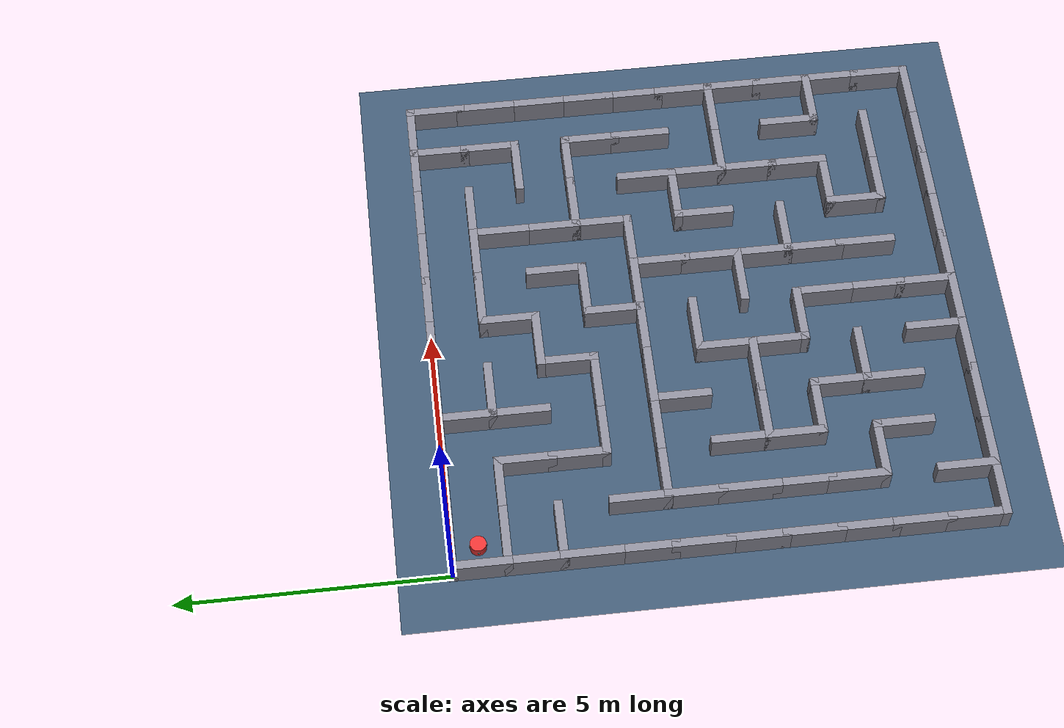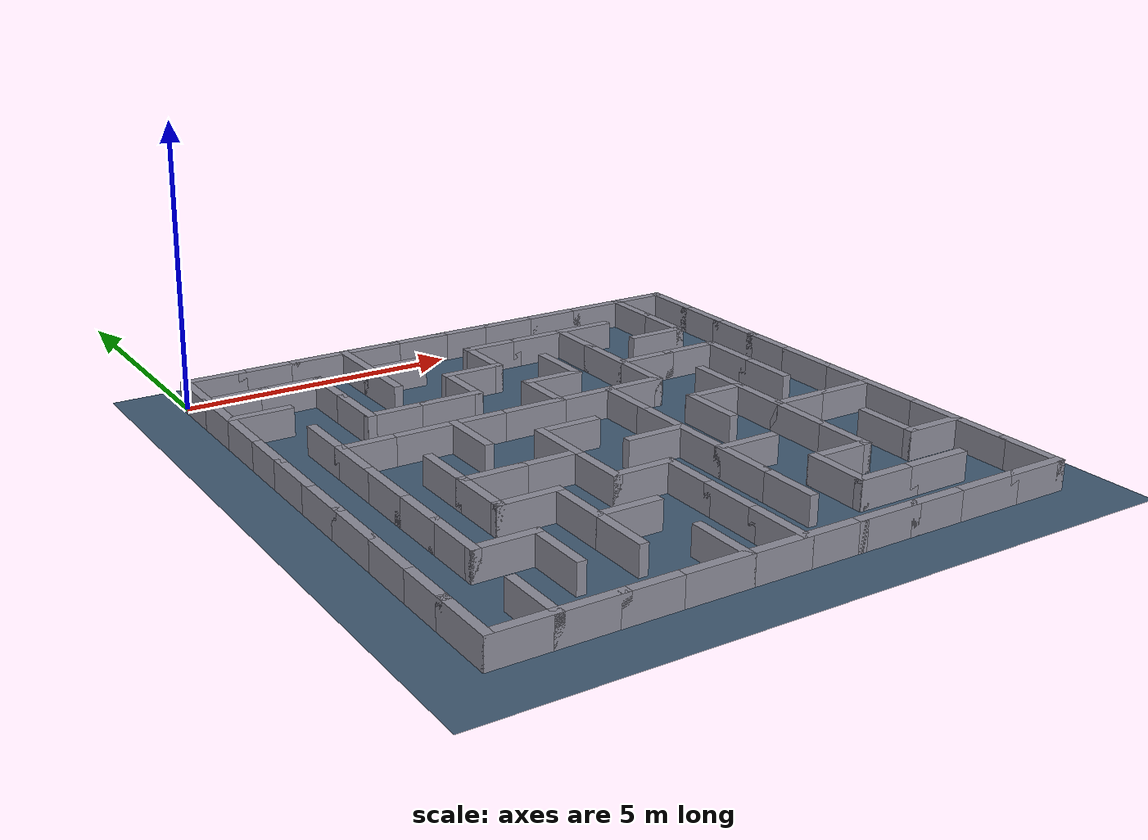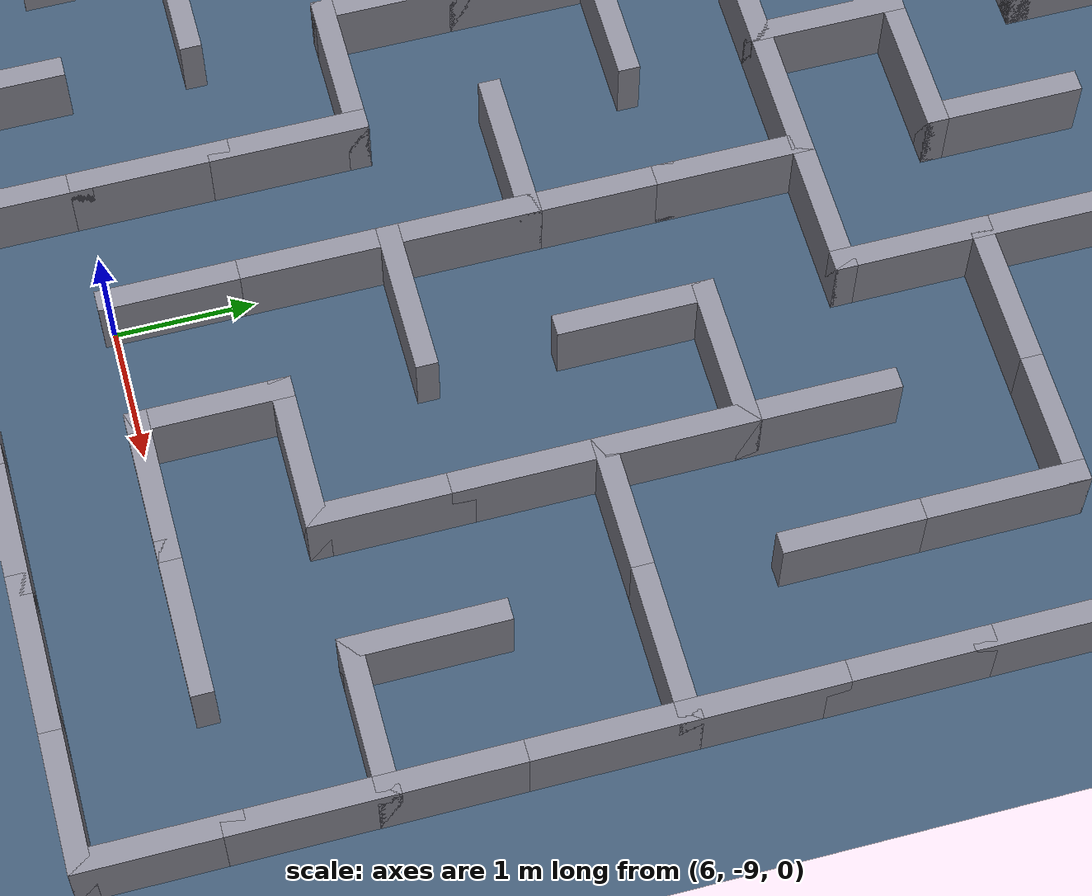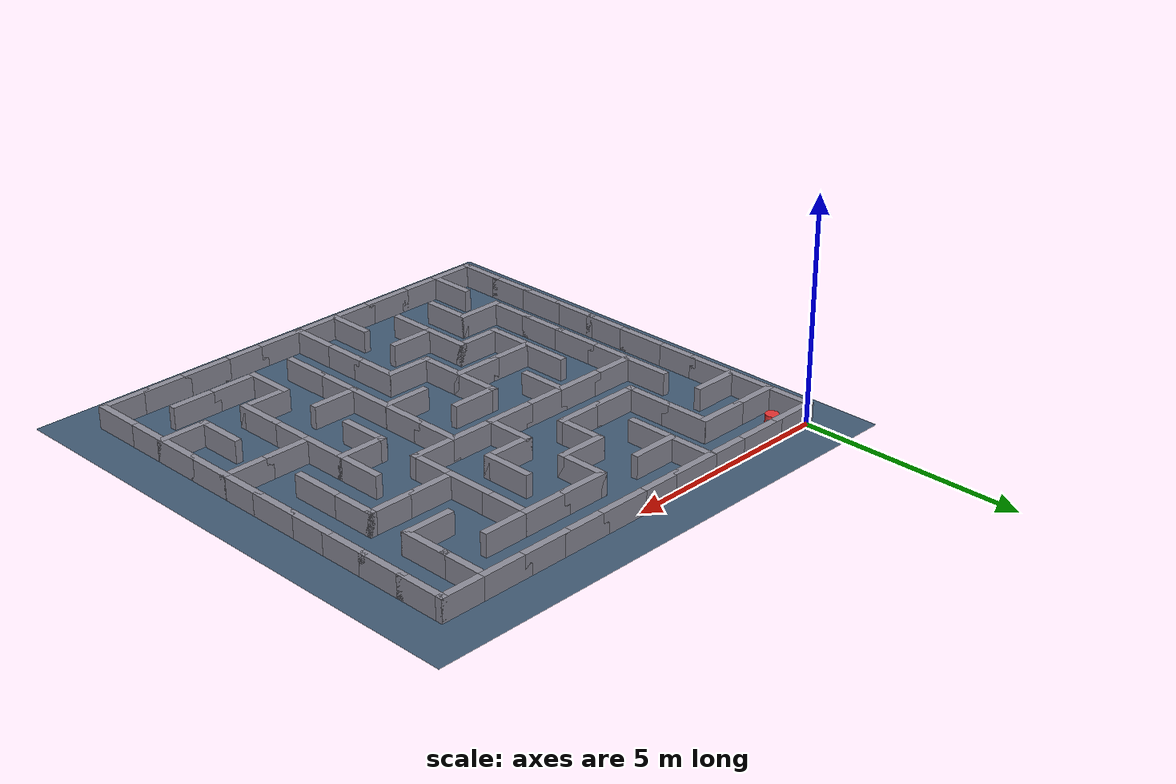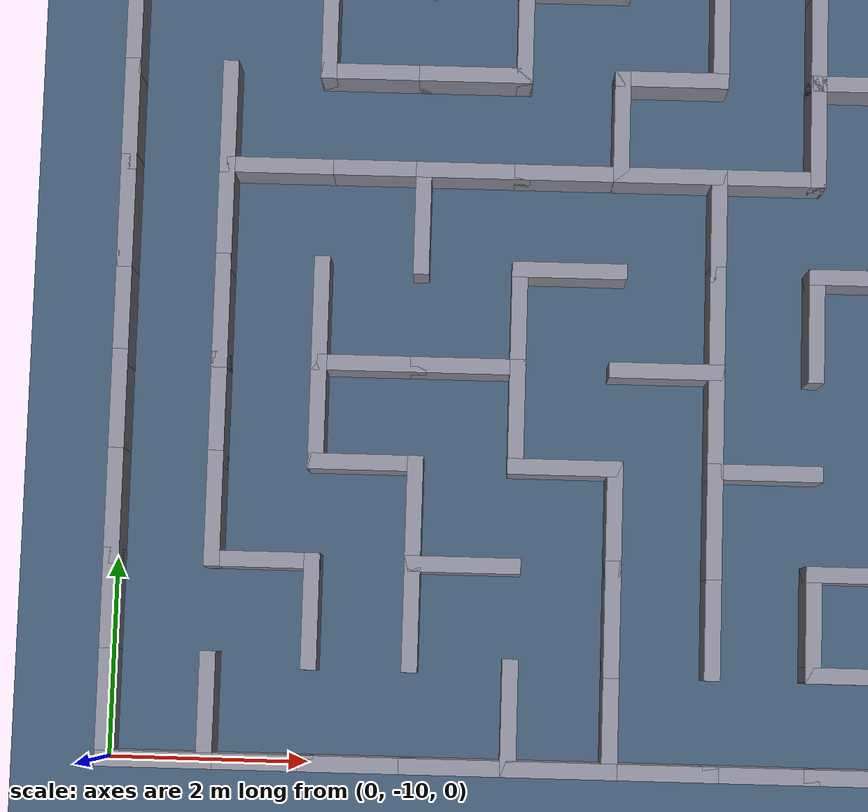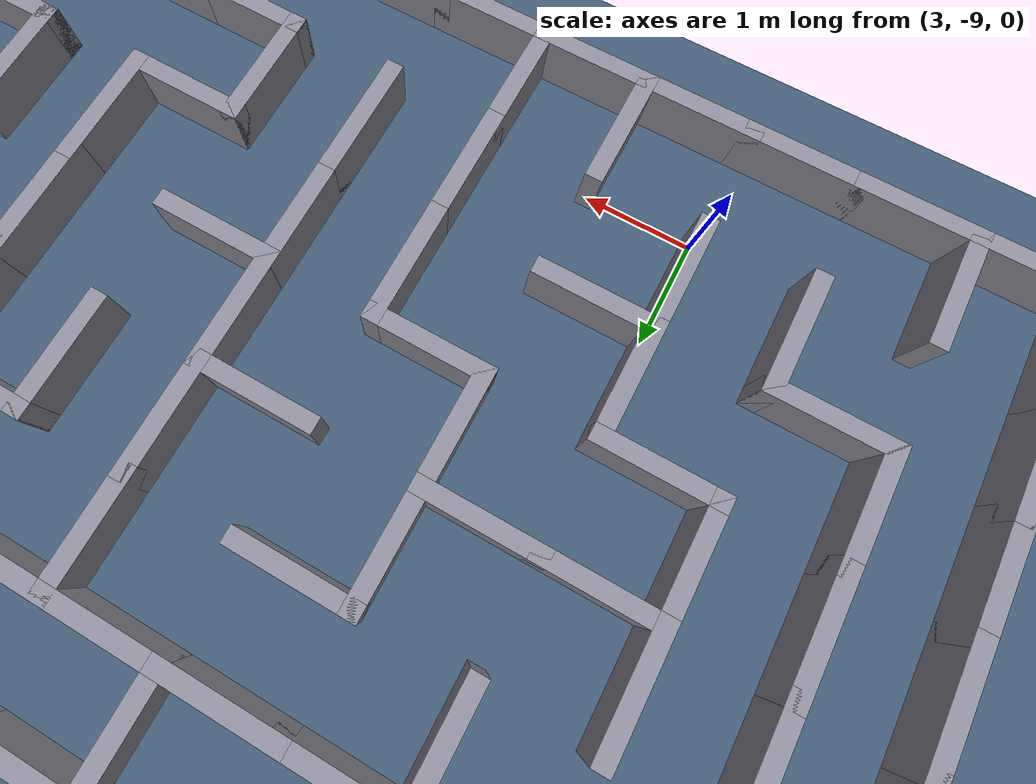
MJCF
<mujoco model="maze">
  <compiler angle="radian" autolimits="true"/>
  <option timestep="0.005" gravity="0 0 -9.81"/>

  <default>
    <default class="wall">
      <geom type="box" contype="1" conaffinity="1" friction="0.8 0.01 0.01"/>
    </default>
  </default>

  <asset>
    <texture type="2d" name="grid" builtin="checker" rgb1="0.2 0.3 0.4" rgb2="0.3 0.4 0.5"
             width="300" height="300"/>
    <material name="grid_mat" texture="grid" texrepeat="10 10" reflectance="0.1"/>
  </asset>

  <worldbody>
    <light pos="5.0 -5.0 4" dir="0 0 -1" diffuse="1 1 1" directional="true"/>
    <geom name="floor" type="plane" pos="5.0000 -5.0000 0"
          size="6.0000 6.0000 0.1" material="grid_mat"/>

      <geom name="wall_0" type="box" pos="0.5000 0.0000 0.2500" size="0.5800 0.0800 0.2500" rgba="0.55 0.55 0.6 1" class="wall"/>
      <geom name="wall_1" type="box" pos="0.0000 -0.5000 0.2500" size="0.0800 0.5800 0.2500" rgba="0.55 0.55 0.6 1" class="wall"/>
      <geom name="wall_2" type="box" pos="0.5000 -1.0000 0.2500" size="0.5800 0.0800 0.2500" rgba="0.55 0.55 0.6 1" class="wall"/>
      <geom name="wall_3" type="box" pos="1.5000 0.0000 0.2500" size="0.5800 0.0800 0.2500" rgba="0.55 0.55 0.6 1" class="wall"/>
      <geom name="wall_4" type="box" pos="1.5000 -1.0000 0.2500" size="0.5800 0.0800 0.2500" rgba="0.55 0.55 0.6 1" class="wall"/>
      <geom name="wall_5" type="box" pos="2.5000 0.0000 0.2500" size="0.5800 0.0800 0.2500" rgba="0.55 0.55 0.6 1" class="wall"/>
      <geom name="wall_6" type="box" pos="3.0000 -0.5000 0.2500" size="0.0800 0.5800 0.2500" rgba="0.55 0.55 0.6 1" class="wall"/>
      <geom name="wall_7" type="box" pos="3.5000 0.0000 0.2500" size="0.5800 0.0800 0.2500" rgba="0.55 0.55 0.6 1" class="wall"/>
      <geom name="wall_8" type="box" pos="3.5000 -1.0000 0.2500" size="0.5800 0.0800 0.2500" rgba="0.55 0.55 0.6 1" class="wall"/>
      <geom name="wall_9" type="box" pos="4.5000 0.0000 0.2500" size="0.5800 0.0800 0.2500" rgba="0.55 0.55 0.6 1" class="wall"/>
      <geom name="wall_10" type="box" pos="5.5000 0.0000 0.2500" size="0.5800 0.0800 0.2500" rgba="0.55 0.55 0.6 1" class="wall"/>
      <geom name="wall_11" type="box" pos="5.5000 -1.0000 0.2500" size="0.5800 0.0800 0.2500" rgba="0.55 0.55 0.6 1" class="wall"/>
      <geom name="wall_12" type="box" pos="6.5000 0.0000 0.2500" size="0.5800 0.0800 0.2500" rgba="0.55 0.55 0.6 1" class="wall"/>
      <geom name="wall_13" type="box" pos="6.5000 -1.0000 0.2500" size="0.5800 0.0800 0.2500" rgba="0.55 0.55 0.6 1" class="wall"/>
      <geom name="wall_14" type="box" pos="7.5000 0.0000 0.2500" size="0.5800 0.0800 0.2500" rgba="0.55 0.55 0.6 1" class="wall"/>
      <geom name="wall_15" type="box" pos="7.5000 -1.0000 0.2500" size="0.5800 0.0800 0.2500" rgba="0.55 0.55 0.6 1" class="wall"/>
      <geom name="wall_16" type="box" pos="8.5000 0.0000 0.2500" size="0.5800 0.0800 0.2500" rgba="0.55 0.55 0.6 1" class="wall"/>
      <geom name="wall_17" type="box" pos="9.0000 -0.5000 0.2500" size="0.0800 0.5800 0.2500" rgba="0.55 0.55 0.6 1" class="wall"/>
      <geom name="wall_18" type="box" pos="9.5000 0.0000 0.2500" size="0.5800 0.0800 0.2500" rgba="0.55 0.55 0.6 1" class="wall"/>
      <geom name="wall_19" type="box" pos="10.0000 -0.5000 0.2500" size="0.0800 0.5800 0.2500" rgba="0.55 0.55 0.6 1" class="wall"/>
      <geom name="wall_20" type="box" pos="0.0000 -1.5000 0.2500" size="0.0800 0.5800 0.2500" rgba="0.55 0.55 0.6 1" class="wall"/>
      <geom name="wall_21" type="box" pos="0.5000 -2.0000 0.2500" size="0.5800 0.0800 0.2500" rgba="0.55 0.55 0.6 1" class="wall"/>
      <geom name="wall_22" type="box" pos="2.0000 -1.5000 0.2500" size="0.0800 0.5800 0.2500" rgba="0.55 0.55 0.6 1" class="wall"/>
      <geom name="wall_23" type="box" pos="3.0000 -1.5000 0.2500" size="0.0800 0.5800 0.2500" rgba="0.55 0.55 0.6 1" class="wall"/>
      <geom name="wall_24" type="box" pos="4.5000 -2.0000 0.2500" size="0.5800 0.0800 0.2500" rgba="0.55 0.55 0.6 1" class="wall"/>
      <geom name="wall_25" type="box" pos="5.0000 -1.5000 0.2500" size="0.0800 0.5800 0.2500" rgba="0.55 0.55 0.6 1" class="wall"/>
      <geom name="wall_26" type="box" pos="7.0000 -1.5000 0.2500" size="0.0800 0.5800 0.2500" rgba="0.55 0.55 0.6 1" class="wall"/>
      <geom name="wall_27" type="box" pos="8.5000 -2.0000 0.2500" size="0.5800 0.0800 0.2500" rgba="0.55 0.55 0.6 1" class="wall"/>
      <geom name="wall_28" type="box" pos="9.0000 -1.5000 0.2500" size="0.0800 0.5800 0.2500" rgba="0.55 0.55 0.6 1" class="wall"/>
      <geom name="wall_29" type="box" pos="10.0000 -1.5000 0.2500" size="0.0800 0.5800 0.2500" rgba="0.55 0.55 0.6 1" class="wall"/>
      <geom name="wall_30" type="box" pos="0.0000 -2.5000 0.2500" size="0.0800 0.5800 0.2500" rgba="0.55 0.55 0.6 1" class="wall"/>
      <geom name="wall_31" type="box" pos="2.0000 -2.5000 0.2500" size="0.0800 0.5800 0.2500" rgba="0.55 0.55 0.6 1" class="wall"/>
      <geom name="wall_32" type="box" pos="2.5000 -3.0000 0.2500" size="0.5800 0.0800 0.2500" rgba="0.55 0.55 0.6 1" class="wall"/>
      <geom name="wall_33" type="box" pos="3.5000 -3.0000 0.2500" size="0.5800 0.0800 0.2500" rgba="0.55 0.55 0.6 1" class="wall"/>
      <geom name="wall_34" type="box" pos="4.0000 -2.5000 0.2500" size="0.0800 0.5800 0.2500" rgba="0.55 0.55 0.6 1" class="wall"/>
      <geom name="wall_35" type="box" pos="5.5000 -3.0000 0.2500" size="0.5800 0.0800 0.2500" rgba="0.55 0.55 0.6 1" class="wall"/>
      <geom name="wall_36" type="box" pos="6.0000 -2.5000 0.2500" size="0.0800 0.5800 0.2500" rgba="0.55 0.55 0.6 1" class="wall"/>
      <geom name="wall_37" type="box" pos="7.0000 -2.5000 0.2500" size="0.0800 0.5800 0.2500" rgba="0.55 0.55 0.6 1" class="wall"/>
      <geom name="wall_38" type="box" pos="7.5000 -3.0000 0.2500" size="0.5800 0.0800 0.2500" rgba="0.55 0.55 0.6 1" class="wall"/>
      <geom name="wall_39" type="box" pos="8.5000 -3.0000 0.2500" size="0.5800 0.0800 0.2500" rgba="0.55 0.55 0.6 1" class="wall"/>
      <geom name="wall_40" type="box" pos="10.0000 -2.5000 0.2500" size="0.0800 0.5800 0.2500" rgba="0.55 0.55 0.6 1" class="wall"/>
      <geom name="wall_41" type="box" pos="0.0000 -3.5000 0.2500" size="0.0800 0.5800 0.2500" rgba="0.55 0.55 0.6 1" class="wall"/>
      <geom name="wall_42" type="box" pos="1.0000 -3.5000 0.2500" size="0.0800 0.5800 0.2500" rgba="0.55 0.55 0.6 1" class="wall"/>
      <geom name="wall_43" type="box" pos="1.5000 -4.0000 0.2500" size="0.5800 0.0800 0.2500" rgba="0.55 0.55 0.6 1" class="wall"/>
      <geom name="wall_44" type="box" pos="2.5000 -4.0000 0.2500" size="0.5800 0.0800 0.2500" rgba="0.55 0.55 0.6 1" class="wall"/>
      <geom name="wall_45" type="box" pos="3.5000 -4.0000 0.2500" size="0.5800 0.0800 0.2500" rgba="0.55 0.55 0.6 1" class="wall"/>
      <geom name="wall_46" type="box" pos="4.5000 -4.0000 0.2500" size="0.5800 0.0800 0.2500" rgba="0.55 0.55 0.6 1" class="wall"/>
      <geom name="wall_47" type="box" pos="5.0000 -3.5000 0.2500" size="0.0800 0.5800 0.2500" rgba="0.55 0.55 0.6 1" class="wall"/>
      <geom name="wall_48" type="box" pos="5.5000 -4.0000 0.2500" size="0.5800 0.0800 0.2500" rgba="0.55 0.55 0.6 1" class="wall"/>
      <geom name="wall_49" type="box" pos="6.5000 -4.0000 0.2500" size="0.5800 0.0800 0.2500" rgba="0.55 0.55 0.6 1" class="wall"/>
      <geom name="wall_50" type="box" pos="7.0000 -3.5000 0.2500" size="0.0800 0.5800 0.2500" rgba="0.55 0.55 0.6 1" class="wall"/>
      <geom name="wall_51" type="box" pos="9.0000 -3.5000 0.2500" size="0.0800 0.5800 0.2500" rgba="0.55 0.55 0.6 1" class="wall"/>
      <geom name="wall_52" type="box" pos="10.0000 -3.5000 0.2500" size="0.0800 0.5800 0.2500" rgba="0.55 0.55 0.6 1" class="wall"/>
      <geom name="wall_53" type="box" pos="0.0000 -4.5000 0.2500" size="0.0800 0.5800 0.2500" rgba="0.55 0.55 0.6 1" class="wall"/>
      <geom name="wall_54" type="box" pos="1.0000 -4.5000 0.2500" size="0.0800 0.5800 0.2500" rgba="0.55 0.55 0.6 1" class="wall"/>
      <geom name="wall_55" type="box" pos="3.0000 -4.5000 0.2500" size="0.0800 0.5800 0.2500" rgba="0.55 0.55 0.6 1" class="wall"/>
      <geom name="wall_56" type="box" pos="4.5000 -5.0000 0.2500" size="0.5800 0.0800 0.2500" rgba="0.55 0.55 0.6 1" class="wall"/>
      <geom name="wall_57" type="box" pos="6.0000 -4.5000 0.2500" size="0.0800 0.5800 0.2500" rgba="0.55 0.55 0.6 1" class="wall"/>
      <geom name="wall_58" type="box" pos="7.5000 -5.0000 0.2500" size="0.5800 0.0800 0.2500" rgba="0.55 0.55 0.6 1" class="wall"/>
      <geom name="wall_59" type="box" pos="8.0000 -4.5000 0.2500" size="0.0800 0.5800 0.2500" rgba="0.55 0.55 0.6 1" class="wall"/>
      <geom name="wall_60" type="box" pos="9.0000 -4.5000 0.2500" size="0.0800 0.5800 0.2500" rgba="0.55 0.55 0.6 1" class="wall"/>
      <geom name="wall_61" type="box" pos="10.0000 -4.5000 0.2500" size="0.0800 0.5800 0.2500" rgba="0.55 0.55 0.6 1" class="wall"/>
      <geom name="wall_62" type="box" pos="0.0000 -5.5000 0.2500" size="0.0800 0.5800 0.2500" rgba="0.55 0.55 0.6 1" class="wall"/>
      <geom name="wall_63" type="box" pos="1.0000 -5.5000 0.2500" size="0.0800 0.5800 0.2500" rgba="0.55 0.55 0.6 1" class="wall"/>
      <geom name="wall_64" type="box" pos="2.0000 -5.5000 0.2500" size="0.0800 0.5800 0.2500" rgba="0.55 0.55 0.6 1" class="wall"/>
      <geom name="wall_65" type="box" pos="2.5000 -6.0000 0.2500" size="0.5800 0.0800 0.2500" rgba="0.55 0.55 0.6 1" class="wall"/>
      <geom name="wall_66" type="box" pos="3.5000 -6.0000 0.2500" size="0.5800 0.0800 0.2500" rgba="0.55 0.55 0.6 1" class="wall"/>
      <geom name="wall_67" type="box" pos="4.0000 -5.5000 0.2500" size="0.0800 0.5800 0.2500" rgba="0.55 0.55 0.6 1" class="wall"/>
      <geom name="wall_68" type="box" pos="5.5000 -6.0000 0.2500" size="0.5800 0.0800 0.2500" rgba="0.55 0.55 0.6 1" class="wall"/>
      <geom name="wall_69" type="box" pos="6.0000 -5.5000 0.2500" size="0.0800 0.5800 0.2500" rgba="0.55 0.55 0.6 1" class="wall"/>
      <geom name="wall_70" type="box" pos="7.0000 -5.5000 0.2500" size="0.0800 0.5800 0.2500" rgba="0.55 0.55 0.6 1" class="wall"/>
      <geom name="wall_71" type="box" pos="8.0000 -5.5000 0.2500" size="0.0800 0.5800 0.2500" rgba="0.55 0.55 0.6 1" class="wall"/>
      <geom name="wall_72" type="box" pos="8.5000 -6.0000 0.2500" size="0.5800 0.0800 0.2500" rgba="0.55 0.55 0.6 1" class="wall"/>
      <geom name="wall_73" type="box" pos="9.5000 -6.0000 0.2500" size="0.5800 0.0800 0.2500" rgba="0.55 0.55 0.6 1" class="wall"/>
      <geom name="wall_74" type="box" pos="10.0000 -5.5000 0.2500" size="0.0800 0.5800 0.2500" rgba="0.55 0.55 0.6 1" class="wall"/>
      <geom name="wall_75" type="box" pos="0.0000 -6.5000 0.2500" size="0.0800 0.5800 0.2500" rgba="0.55 0.55 0.6 1" class="wall"/>
      <geom name="wall_76" type="box" pos="1.0000 -6.5000 0.2500" size="0.0800 0.5800 0.2500" rgba="0.55 0.55 0.6 1" class="wall"/>
      <geom name="wall_77" type="box" pos="2.0000 -6.5000 0.2500" size="0.0800 0.5800 0.2500" rgba="0.55 0.55 0.6 1" class="wall"/>
      <geom name="wall_78" type="box" pos="2.5000 -7.0000 0.2500" size="0.5800 0.0800 0.2500" rgba="0.55 0.55 0.6 1" class="wall"/>
      <geom name="wall_79" type="box" pos="4.0000 -6.5000 0.2500" size="0.0800 0.5800 0.2500" rgba="0.55 0.55 0.6 1" class="wall"/>
      <geom name="wall_80" type="box" pos="4.5000 -7.0000 0.2500" size="0.5800 0.0800 0.2500" rgba="0.55 0.55 0.6 1" class="wall"/>
      <geom name="wall_81" type="box" pos="6.0000 -6.5000 0.2500" size="0.0800 0.5800 0.2500" rgba="0.55 0.55 0.6 1" class="wall"/>
      <geom name="wall_82" type="box" pos="6.5000 -7.0000 0.2500" size="0.5800 0.0800 0.2500" rgba="0.55 0.55 0.6 1" class="wall"/>
      <geom name="wall_83" type="box" pos="8.0000 -6.5000 0.2500" size="0.0800 0.5800 0.2500" rgba="0.55 0.55 0.6 1" class="wall"/>
      <geom name="wall_84" type="box" pos="10.0000 -6.5000 0.2500" size="0.0800 0.5800 0.2500" rgba="0.55 0.55 0.6 1" class="wall"/>
      <geom name="wall_85" type="box" pos="0.0000 -7.5000 0.2500" size="0.0800 0.5800 0.2500" rgba="0.55 0.55 0.6 1" class="wall"/>
      <geom name="wall_86" type="box" pos="1.0000 -7.5000 0.2500" size="0.0800 0.5800 0.2500" rgba="0.55 0.55 0.6 1" class="wall"/>
      <geom name="wall_87" type="box" pos="1.5000 -8.0000 0.2500" size="0.5800 0.0800 0.2500" rgba="0.55 0.55 0.6 1" class="wall"/>
      <geom name="wall_88" type="box" pos="3.0000 -7.5000 0.2500" size="0.0800 0.5800 0.2500" rgba="0.55 0.55 0.6 1" class="wall"/>
      <geom name="wall_89" type="box" pos="3.5000 -8.0000 0.2500" size="0.5800 0.0800 0.2500" rgba="0.55 0.55 0.6 1" class="wall"/>
      <geom name="wall_90" type="box" pos="5.0000 -7.5000 0.2500" size="0.0800 0.5800 0.2500" rgba="0.55 0.55 0.6 1" class="wall"/>
      <geom name="wall_91" type="box" pos="6.0000 -7.5000 0.2500" size="0.0800 0.5800 0.2500" rgba="0.55 0.55 0.6 1" class="wall"/>
      <geom name="wall_92" type="box" pos="7.5000 -8.0000 0.2500" size="0.5800 0.0800 0.2500" rgba="0.55 0.55 0.6 1" class="wall"/>
      <geom name="wall_93" type="box" pos="8.0000 -7.5000 0.2500" size="0.0800 0.5800 0.2500" rgba="0.55 0.55 0.6 1" class="wall"/>
      <geom name="wall_94" type="box" pos="9.0000 -7.5000 0.2500" size="0.0800 0.5800 0.2500" rgba="0.55 0.55 0.6 1" class="wall"/>
      <geom name="wall_95" type="box" pos="9.5000 -8.0000 0.2500" size="0.5800 0.0800 0.2500" rgba="0.55 0.55 0.6 1" class="wall"/>
      <geom name="wall_96" type="box" pos="10.0000 -7.5000 0.2500" size="0.0800 0.5800 0.2500" rgba="0.55 0.55 0.6 1" class="wall"/>
      <geom name="wall_97" type="box" pos="0.0000 -8.5000 0.2500" size="0.0800 0.5800 0.2500" rgba="0.55 0.55 0.6 1" class="wall"/>
      <geom name="wall_98" type="box" pos="2.0000 -8.5000 0.2500" size="0.0800 0.5800 0.2500" rgba="0.55 0.55 0.6 1" class="wall"/>
      <geom name="wall_99" type="box" pos="3.0000 -8.5000 0.2500" size="0.0800 0.5800 0.2500" rgba="0.55 0.55 0.6 1" class="wall"/>
      <geom name="wall_100" type="box" pos="5.0000 -8.5000 0.2500" size="0.0800 0.5800 0.2500" rgba="0.55 0.55 0.6 1" class="wall"/>
      <geom name="wall_101" type="box" pos="6.0000 -8.5000 0.2500" size="0.0800 0.5800 0.2500" rgba="0.55 0.55 0.6 1" class="wall"/>
      <geom name="wall_102" type="box" pos="7.0000 -8.5000 0.2500" size="0.0800 0.5800 0.2500" rgba="0.55 0.55 0.6 1" class="wall"/>
      <geom name="wall_103" type="box" pos="7.5000 -9.0000 0.2500" size="0.5800 0.0800 0.2500" rgba="0.55 0.55 0.6 1" class="wall"/>
      <geom name="wall_104" type="box" pos="8.5000 -9.0000 0.2500" size="0.5800 0.0800 0.2500" rgba="0.55 0.55 0.6 1" class="wall"/>
      <geom name="wall_105" type="box" pos="10.0000 -8.5000 0.2500" size="0.0800 0.5800 0.2500" rgba="0.55 0.55 0.6 1" class="wall"/>
      <geom name="wall_106" type="box" pos="0.0000 -9.5000 0.2500" size="0.0800 0.5800 0.2500" rgba="0.55 0.55 0.6 1" class="wall"/>
      <geom name="wall_107" type="box" pos="0.5000 -10.0000 0.2500" size="0.5800 0.0800 0.2500" rgba="0.55 0.55 0.6 1" class="wall"/>
      <geom name="wall_108" type="box" pos="1.0000 -9.5000 0.2500" size="0.0800 0.5800 0.2500" rgba="0.55 0.55 0.6 1" class="wall"/>
      <geom name="wall_109" type="box" pos="1.5000 -10.0000 0.2500" size="0.5800 0.0800 0.2500" rgba="0.55 0.55 0.6 1" class="wall"/>
      <geom name="wall_110" type="box" pos="2.5000 -10.0000 0.2500" size="0.5800 0.0800 0.2500" rgba="0.55 0.55 0.6 1" class="wall"/>
      <geom name="wall_111" type="box" pos="3.5000 -10.0000 0.2500" size="0.5800 0.0800 0.2500" rgba="0.55 0.55 0.6 1" class="wall"/>
      <geom name="wall_112" type="box" pos="4.0000 -9.5000 0.2500" size="0.0800 0.5800 0.2500" rgba="0.55 0.55 0.6 1" class="wall"/>
      <geom name="wall_113" type="box" pos="4.5000 -10.0000 0.2500" size="0.5800 0.0800 0.2500" rgba="0.55 0.55 0.6 1" class="wall"/>
      <geom name="wall_114" type="box" pos="5.0000 -9.5000 0.2500" size="0.0800 0.5800 0.2500" rgba="0.55 0.55 0.6 1" class="wall"/>
      <geom name="wall_115" type="box" pos="5.5000 -10.0000 0.2500" size="0.5800 0.0800 0.2500" rgba="0.55 0.55 0.6 1" class="wall"/>
      <geom name="wall_116" type="box" pos="6.5000 -10.0000 0.2500" size="0.5800 0.0800 0.2500" rgba="0.55 0.55 0.6 1" class="wall"/>
      <geom name="wall_117" type="box" pos="7.5000 -10.0000 0.2500" size="0.5800 0.0800 0.2500" rgba="0.55 0.55 0.6 1" class="wall"/>
      <geom name="wall_118" type="box" pos="8.5000 -10.0000 0.2500" size="0.5800 0.0800 0.2500" rgba="0.55 0.55 0.6 1" class="wall"/>
      <geom name="wall_119" type="box" pos="9.5000 -10.0000 0.2500" size="0.5800 0.0800 0.2500" rgba="0.55 0.55 0.6 1" class="wall"/>
      <geom name="wall_120" type="box" pos="10.0000 -9.5000 0.2500" size="0.0800 0.5800 0.2500" rgba="0.55 0.55 0.6 1" class="wall"/>

    <body name="robot" pos="0.5000 -0.5000 0.15">
      <joint name="robot_x" type="slide" axis="1 0 0" damping="8" limited="false"/>
      <joint name="robot_y" type="slide" axis="0 1 0" damping="8" limited="false"/>
      <geom name="robot_geom" type="cylinder" size="0.15 0.1" rgba="0.9 0.2 0.2 1" mass="1.0"/>
      <!-- Rangefinder sensors fire along each site's local +Z axis, so each
           site below is rotated (axisangle) to point its local Z outward
           in the world direction named. -->
      <site name="s_east"  pos="0.15 0 0"  axisangle="0 1 0 1.5708"  size="0.02"/>
      <site name="s_west"  pos="-0.15 0 0" axisangle="0 1 0 -1.5708" size="0.02"/>
      <site name="s_north" pos="0 0.15 0"  axisangle="1 0 0 -1.5708" size="0.02"/>
      <site name="s_south" pos="0 -0.15 0" axisangle="1 0 0 1.5708"  size="0.02"/>
    </body>
  </worldbody>

  <actuator>
    <velocity name="act_x" joint="robot_x" kv="20" ctrlrange="-3 3"/>
    <velocity name="act_y" joint="robot_y" kv="20" ctrlrange="-3 3"/>
  </actuator>

  <sensor>
    <rangefinder name="rf_east"  site="s_east"  cutoff="0.8500"/>
    <rangefinder name="rf_west"  site="s_west"  cutoff="0.8500"/>
    <rangefinder name="rf_north" site="s_north" cutoff="0.8500"/>
    <rangefinder name="rf_south" site="s_south" cutoff="0.8500"/>
  </sensor>
</mujoco>
